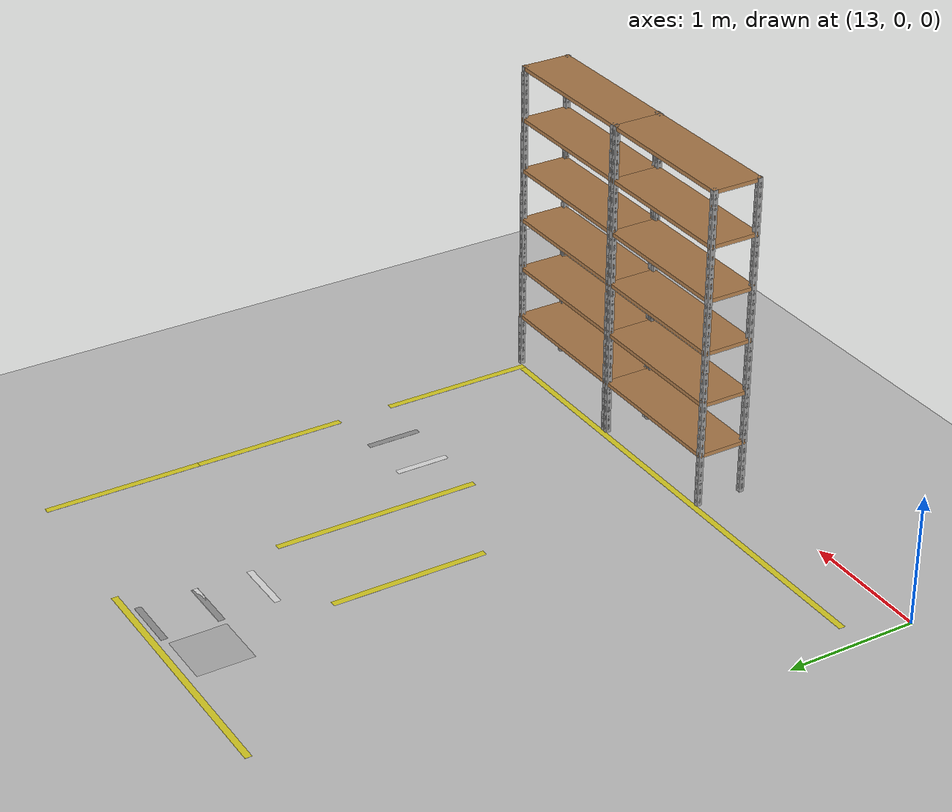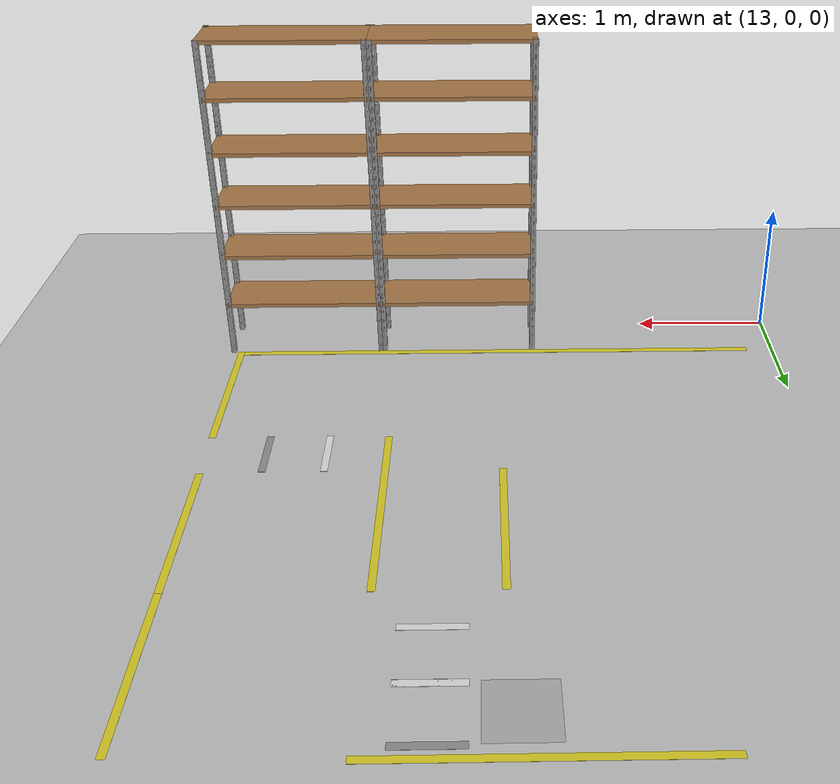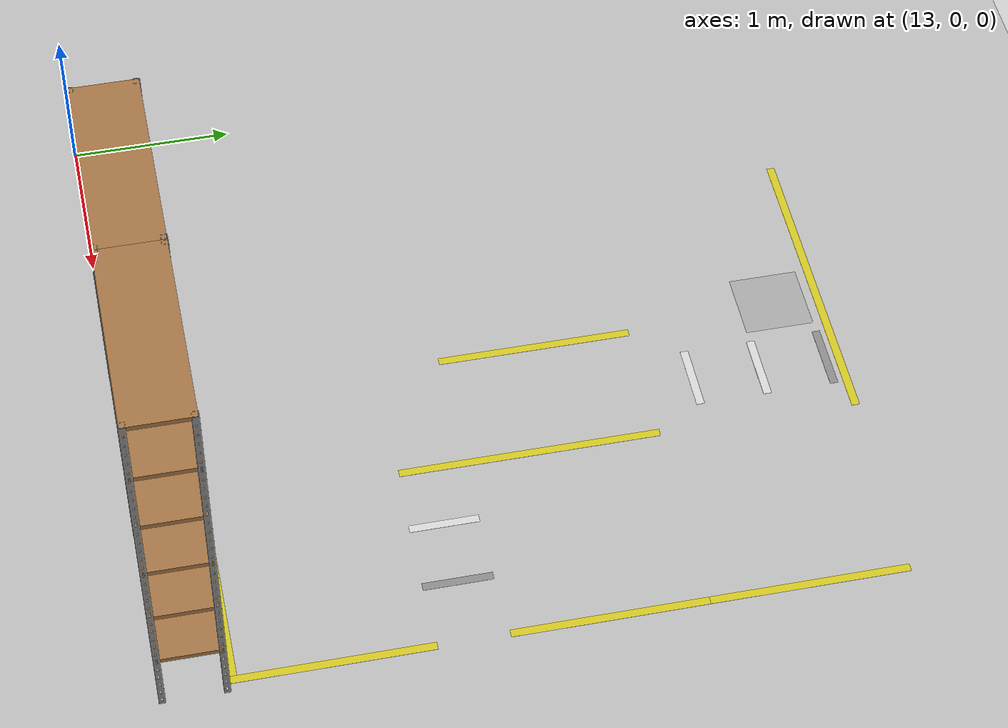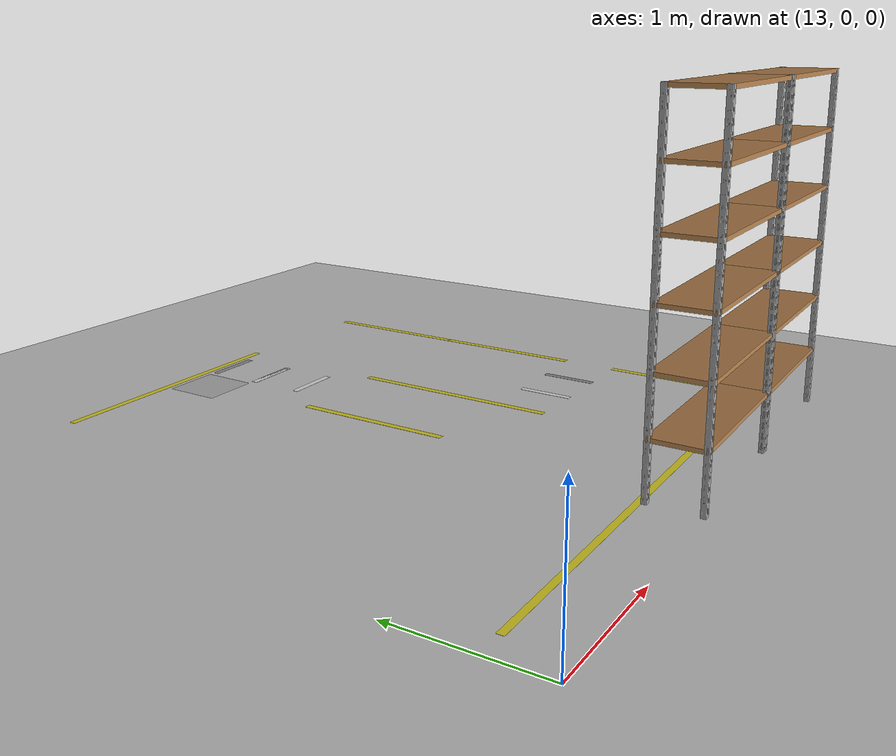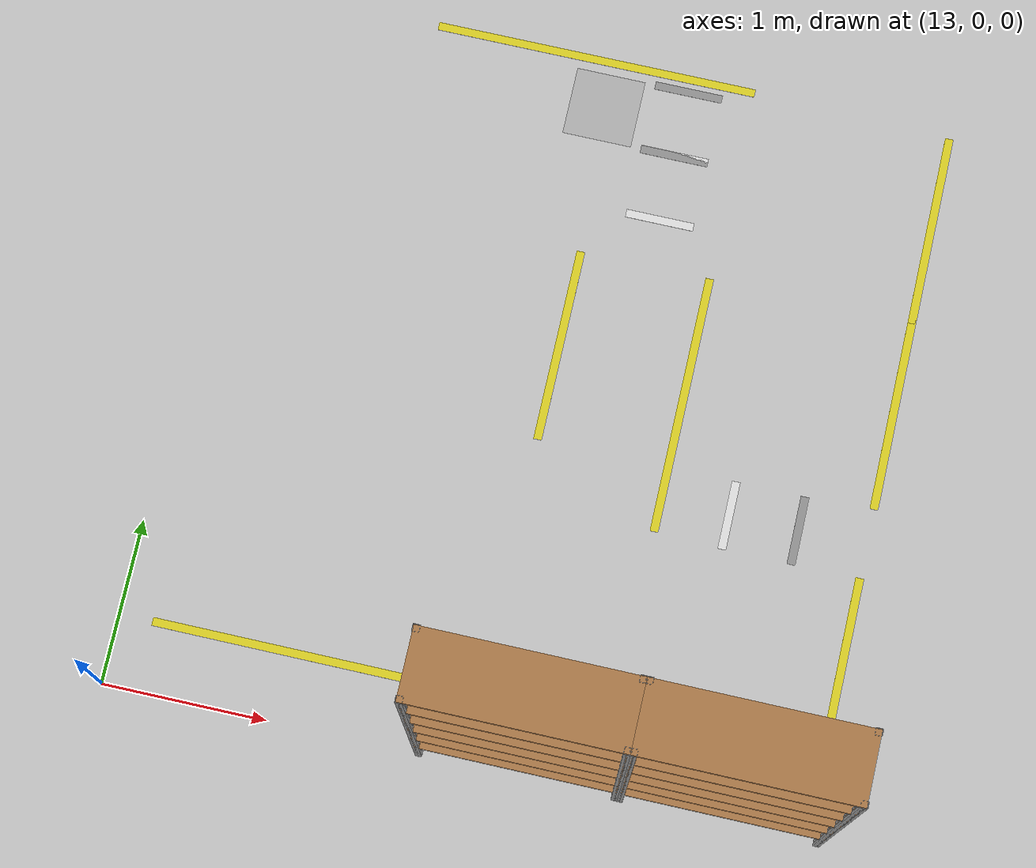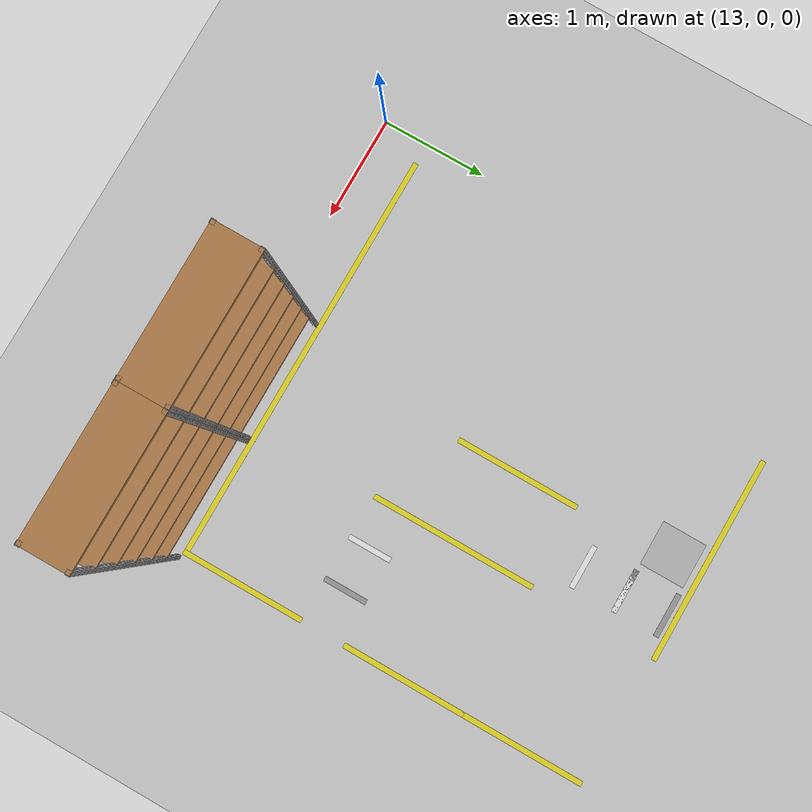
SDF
<sdf version="1.6">
 <world name="default">
  <model name="ground_plane">
   <static>1</static>
   <link name="link">
    <collision name="collision">
     <geometry><plane><normal>0 0 1</normal><size>100 100</size></plane></geometry>
     <surface><friction><ode><mu>100</mu><mu2>50</mu2></ode></friction></surface>
    </collision>
    <visual name="visual">
     <cast_shadows>0</cast_shadows>
     <geometry><plane><normal>0 0 1</normal><size>100 100</size></plane></geometry>
     <material>
      <script><uri>file://media/materials/scripts/gazebo.material</uri><name>Gazebo/Grey</name></script>
     </material>
    </visual>
   </link>
  </model>
  <model name="shelfDemo_120cmx40cm_3">
   <link name="link_0">
    <inertial>
     <mass>1</mass>
     <inertia>
      <ixx>0.166667</ixx>
      <ixy>0</ixy>
      <ixz>0</ixz>
      <iyy>0.166667</iyy>
      <iyz>0</iyz>
      <izz>0.166667</izz>
     </inertia>
    </inertial>
    <visual name="visual">
     <pose>0 0 0.414 0 -0 0</pose>
     <geometry><box><size>1.2 0.4 0.03</size></box></geometry>
     <material>
      <lighting>1</lighting>
      <script><uri>file://media/materials/scripts/gazebo.material</uri><name>Gazebo/WoodFloor</name></script>
      <shader type="pixel"><normal_map>__default__</normal_map></shader>
     </material>
    </visual>
    <visual name="ModelPreview_0::link_0::visual_2">
     <pose>0 0 0.828 0 -0 0</pose>
     <geometry><box><size>1.2 0.4 0.03</size></box></geometry>
     <material>
      <lighting>1</lighting>
      <script><uri>file://media/materials/scripts/gazebo.material</uri><name>Gazebo/WoodFloor</name></script>
      <shader type="pixel"><normal_map>__default__</normal_map></shader>
     </material>
    </visual>
    <visual name="ModelPreview_0::link_0::visual_3">
     <pose>0 0 1.242 0 -0 0</pose>
     <geometry><box><size>1.2 0.4 0.03</size></box></geometry>
     <material>
      <lighting>1</lighting>
      <script><uri>file://media/materials/scripts/gazebo.material</uri><name>Gazebo/WoodFloor</name></script>
      <shader type="pixel"><normal_map>__default__</normal_map></shader>
     </material>
    </visual>
    <visual name="ModelPreview_0::link_0::visual_4">
     <pose>0 0 1.656 0 -0 0</pose>
     <geometry><box><size>1.2 0.4 0.03</size></box></geometry>
     <material>
      <lighting>1</lighting>
      <script><uri>file://media/materials/scripts/gazebo.material</uri><name>Gazebo/WoodFloor</name></script>
      <shader type="pixel"><normal_map>__default__</normal_map></shader>
     </material>
    </visual>
    <visual name="ModelPreview_0::link_0::visual_5">
     <pose>0 0 2.07 0 -0 0</pose>
     <geometry><box><size>1.2 0.4 0.03</size></box></geometry>
     <material>
      <lighting>1</lighting>
      <script><uri>file://media/materials/scripts/gazebo.material</uri><name>Gazebo/WoodFloor</name></script>
      <shader type="pixel"><normal_map>__default__</normal_map></shader>
     </material>
    </visual>
    <visual name="ModelPreview_0::link_0::visual_6">
     <pose>0 0 2.484 0 -0 0</pose>
     <geometry><box><size>1.2 0.4 0.03</size></box></geometry>
     <material>
      <lighting>1</lighting>
      <script><uri>file://media/materials/scripts/gazebo.material</uri><name>Gazebo/WoodFloor</name></script>
      <shader type="pixel"><normal_map>__default__</normal_map></shader>
     </material>
    </visual>
    <visual name="ModelPreview_0::link_0::visual_7">
     <pose>0.585 0.185 0 0 -0 0</pose>
     <geometry>
      <mesh><uri>model://shelfDemo_91/model/2-5mDirek.stl</uri><scale>0.0008 0.0008 0.001</scale></mesh>
     </geometry>
     <material>
      <lighting>1</lighting>
      <script><uri>file://media/materials/scripts/gazebo.material</uri><name>Gazebo/Grey</name></script>
      <shader type="pixel"><normal_map>__default__</normal_map></shader>
      <ambient>0.3 0.3 0.3 1</ambient>
      <diffuse>0.7 0.7 0.7 1</diffuse>
      <specular>0.01 0.01 0.01 1</specular>
      <emissive>0 0 0 1</emissive>
     </material>
    </visual>
    <visual name="ModelPreview_0::link_0::visual_8">
     <pose>-0.585 0.185 0 0 -0 0</pose>
     <geometry>
      <mesh><uri>model://shelfDemo_91/model/2-5mDirek.stl</uri><scale>0.0008 0.0008 0.001</scale></mesh>
     </geometry>
     <material>
      <lighting>1</lighting>
      <script><uri>file://media/materials/scripts/gazebo.material</uri><name>Gazebo/Grey</name></script>
      <shader type="pixel"><normal_map>__default__</normal_map></shader>
      <ambient>0.3 0.3 0.3 1</ambient>
      <diffuse>0.7 0.7 0.7 1</diffuse>
      <specular>0.01 0.01 0.01 1</specular>
      <emissive>0 0 0 1</emissive>
     </material>
    </visual>
    <visual name="ModelPreview_0::link_0::visual_9">
     <pose>0.585 -0.185 0 0 -0 0</pose>
     <geometry>
      <mesh><uri>model://shelfDemo_91/model/2-5mDirek.stl</uri><scale>0.0008 0.0008 0.001</scale></mesh>
     </geometry>
     <material>
      <lighting>1</lighting>
      <script><uri>file://media/materials/scripts/gazebo.material</uri><name>Gazebo/Grey</name></script>
      <shader type="pixel"><normal_map>__default__</normal_map></shader>
      <ambient>0.3 0.3 0.3 1</ambient>
      <diffuse>0.7 0.7 0.7 1</diffuse>
      <specular>0.01 0.01 0.01 1</specular>
      <emissive>0 0 0 1</emissive>
     </material>
    </visual>
    <visual name="ModelPreview_0::link_0::visual_10">
     <pose>-0.585 -0.185 0 0 -0 0</pose>
     <geometry>
      <mesh><uri>model://shelfDemo_91/model/2-5mDirek.stl</uri><scale>0.0008 0.0008 0.001</scale></mesh>
     </geometry>
     <material>
      <lighting>1</lighting>
      <script><uri>file://media/materials/scripts/gazebo.material</uri><name>Gazebo/Grey</name></script>
      <shader type="pixel"><normal_map>__default__</normal_map></shader>
      <ambient>0.3 0.3 0.3 1</ambient>
      <diffuse>0.7 0.7 0.7 1</diffuse>
      <specular>0.01 0.01 0.01 1</specular>
      <emissive>0 0 0 1</emissive>
     </material>
    </visual>
    <collision name="collision_6">
     <pose>0.585 0.185 1.25 0 -0 0</pose>
     <geometry><box><size>0.02 0.02 2.5</size></box></geometry>
    </collision>
    <collision name="collision_7">
     <pose>0.585 -0.185 1.25 0 -0 0</pose>
     <geometry><box><size>0.02 0.02 2.5</size></box></geometry>
    </collision>
    <collision name="collision_8">
     <pose>-0.585 0.185 1.25 0 -0 0</pose>
     <geometry><box><size>0.02 0.02 2.5</size></box></geometry>
    </collision>
    <collision name="collision">
     <pose>0 0 0.414 0 -0 0</pose>
     <geometry><box><size>1.2 0.4 0.03</size></box></geometry>
    </collision>
    <collision name="collision_1">
     <pose>0 0 0.828 0 -0 0</pose>
     <geometry><box><size>1.2 0.4 0.03</size></box></geometry>
    </collision>
    <collision name="collision_2">
     <pose>0 0 1.242 0 -0 0</pose>
     <geometry><box><size>1.2 0.4 0.03</size></box></geometry>
    </collision>
    <collision name="collision_3">
     <pose>0 0 1.656 0 -0 0</pose>
     <geometry><box><size>1.2 0.4 0.03</size></box></geometry>
    </collision>
    <collision name="collision_4">
     <pose>0 0 2.07 0 -0 0</pose>
     <geometry><box><size>1.2 0.4 0.03</size></box></geometry>
    </collision>
    <collision name="collision_5">
     <pose>0 0 2.484 0 -0 0</pose>
     <geometry><box><size>1.2 0.4 0.03</size></box></geometry>
    </collision>
    <collision name="collision_9">
     <pose>-0.585 -0.185 1.25 0 -0 0</pose>
     <geometry><box><size>0.02 0.02 2.5</size></box></geometry>
    </collision>
   </link>
   <static>1</static>
   <pose>15.5 0.2 0 0 -0 0</pose>
  </model>
  <model name="shelfDemo_120cmx40cm_4">
   <link name="link_0">
    <inertial>
     <mass>1</mass>
     <inertia>
      <ixx>0.166667</ixx>
      <ixy>0</ixy>
      <ixz>0</ixz>
      <iyy>0.166667</iyy>
      <iyz>0</iyz>
      <izz>0.166667</izz>
     </inertia>
    </inertial>
    <visual name="visual">
     <pose>0 0 0.414 0 -0 0</pose>
     <geometry><box><size>1.2 0.4 0.03</size></box></geometry>
     <material>
      <lighting>1</lighting>
      <script><uri>file://media/materials/scripts/gazebo.material</uri><name>Gazebo/WoodFloor</name></script>
      <shader type="pixel"><normal_map>__default__</normal_map></shader>
     </material>
    </visual>
    <visual name="ModelPreview_0::link_0::visual_2">
     <pose>0 0 0.828 0 -0 0</pose>
     <geometry><box><size>1.2 0.4 0.03</size></box></geometry>
     <material>
      <lighting>1</lighting>
      <script><uri>file://media/materials/scripts/gazebo.material</uri><name>Gazebo/WoodFloor</name></script>
      <shader type="pixel"><normal_map>__default__</normal_map></shader>
     </material>
    </visual>
    <visual name="ModelPreview_0::link_0::visual_3">
     <pose>0 0 1.242 0 -0 0</pose>
     <geometry><box><size>1.2 0.4 0.03</size></box></geometry>
     <material>
      <lighting>1</lighting>
      <script><uri>file://media/materials/scripts/gazebo.material</uri><name>Gazebo/WoodFloor</name></script>
      <shader type="pixel"><normal_map>__default__</normal_map></shader>
     </material>
    </visual>
    <visual name="ModelPreview_0::link_0::visual_4">
     <pose>0 0 1.656 0 -0 0</pose>
     <geometry><box><size>1.2 0.4 0.03</size></box></geometry>
     <material>
      <lighting>1</lighting>
      <script><uri>file://media/materials/scripts/gazebo.material</uri><name>Gazebo/WoodFloor</name></script>
      <shader type="pixel"><normal_map>__default__</normal_map></shader>
     </material>
    </visual>
    <visual name="ModelPreview_0::link_0::visual_5">
     <pose>0 0 2.07 0 -0 0</pose>
     <geometry><box><size>1.2 0.4 0.03</size></box></geometry>
     <material>
      <lighting>1</lighting>
      <script><uri>file://media/materials/scripts/gazebo.material</uri><name>Gazebo/WoodFloor</name></script>
      <shader type="pixel"><normal_map>__default__</normal_map></shader>
     </material>
    </visual>
    <visual name="ModelPreview_0::link_0::visual_6">
     <pose>0 0 2.484 0 -0 0</pose>
     <geometry><box><size>1.2 0.4 0.03</size></box></geometry>
     <material>
      <lighting>1</lighting>
      <script><uri>file://media/materials/scripts/gazebo.material</uri><name>Gazebo/WoodFloor</name></script>
      <shader type="pixel"><normal_map>__default__</normal_map></shader>
     </material>
    </visual>
    <visual name="ModelPreview_0::link_0::visual_7">
     <pose>0.585 0.185 0 0 -0 0</pose>
     <geometry>
      <mesh><uri>model://shelfDemo_91/model/2-5mDirek.stl</uri><scale>0.0008 0.0008 0.001</scale></mesh>
     </geometry>
     <material>
      <lighting>1</lighting>
      <script><uri>file://media/materials/scripts/gazebo.material</uri><name>Gazebo/Grey</name></script>
      <shader type="pixel"><normal_map>__default__</normal_map></shader>
      <ambient>0.3 0.3 0.3 1</ambient>
      <diffuse>0.7 0.7 0.7 1</diffuse>
      <specular>0.01 0.01 0.01 1</specular>
      <emissive>0 0 0 1</emissive>
     </material>
    </visual>
    <visual name="ModelPreview_0::link_0::visual_8">
     <pose>-0.585 0.185 0 0 -0 0</pose>
     <geometry>
      <mesh><uri>model://shelfDemo_91/model/2-5mDirek.stl</uri><scale>0.0008 0.0008 0.001</scale></mesh>
     </geometry>
     <material>
      <lighting>1</lighting>
      <script><uri>file://media/materials/scripts/gazebo.material</uri><name>Gazebo/Grey</name></script>
      <shader type="pixel"><normal_map>__default__</normal_map></shader>
      <ambient>0.3 0.3 0.3 1</ambient>
      <diffuse>0.7 0.7 0.7 1</diffuse>
      <specular>0.01 0.01 0.01 1</specular>
      <emissive>0 0 0 1</emissive>
     </material>
    </visual>
    <visual name="ModelPreview_0::link_0::visual_9">
     <pose>0.585 -0.185 0 0 -0 0</pose>
     <geometry>
      <mesh><uri>model://shelfDemo_91/model/2-5mDirek.stl</uri><scale>0.0008 0.0008 0.001</scale></mesh>
     </geometry>
     <material>
      <lighting>1</lighting>
      <script><uri>file://media/materials/scripts/gazebo.material</uri><name>Gazebo/Grey</name></script>
      <shader type="pixel"><normal_map>__default__</normal_map></shader>
      <ambient>0.3 0.3 0.3 1</ambient>
      <diffuse>0.7 0.7 0.7 1</diffuse>
      <specular>0.01 0.01 0.01 1</specular>
      <emissive>0 0 0 1</emissive>
     </material>
    </visual>
    <visual name="ModelPreview_0::link_0::visual_10">
     <pose>-0.585 -0.185 0 0 -0 0</pose>
     <geometry>
      <mesh><uri>model://shelfDemo_91/model/2-5mDirek.stl</uri><scale>0.0008 0.0008 0.001</scale></mesh>
     </geometry>
     <material>
      <lighting>1</lighting>
      <script><uri>file://media/materials/scripts/gazebo.material</uri><name>Gazebo/Grey</name></script>
      <shader type="pixel"><normal_map>__default__</normal_map></shader>
      <ambient>0.3 0.3 0.3 1</ambient>
      <diffuse>0.7 0.7 0.7 1</diffuse>
      <specular>0.01 0.01 0.01 1</specular>
      <emissive>0 0 0 1</emissive>
     </material>
    </visual>
    <collision name="collision_6">
     <pose>0.585 0.185 1.25 0 -0 0</pose>
     <geometry><box><size>0.02 0.02 2.5</size></box></geometry>
    </collision>
    <collision name="collision_7">
     <pose>0.585 -0.185 1.25 0 -0 0</pose>
     <geometry><box><size>0.02 0.02 2.5</size></box></geometry>
    </collision>
    <collision name="collision_8">
     <pose>-0.585 0.185 1.25 0 -0 0</pose>
     <geometry><box><size>0.02 0.02 2.5</size></box></geometry>
    </collision>
    <collision name="collision">
     <pose>0 0 0.414 0 -0 0</pose>
     <geometry><box><size>1.2 0.4 0.03</size></box></geometry>
    </collision>
    <collision name="collision_1">
     <pose>0 0 0.828 0 -0 0</pose>
     <geometry><box><size>1.2 0.4 0.03</size></box></geometry>
    </collision>
    <collision name="collision_2">
     <pose>0 0 1.242 0 -0 0</pose>
     <geometry><box><size>1.2 0.4 0.03</size></box></geometry>
    </collision>
    <collision name="collision_3">
     <pose>0 0 1.656 0 -0 0</pose>
     <geometry><box><size>1.2 0.4 0.03</size></box></geometry>
    </collision>
    <collision name="collision_4">
     <pose>0 0 2.07 0 -0 0</pose>
     <geometry><box><size>1.2 0.4 0.03</size></box></geometry>
    </collision>
    <collision name="collision_5">
     <pose>0 0 2.484 0 -0 0</pose>
     <geometry><box><size>1.2 0.4 0.03</size></box></geometry>
    </collision>
    <collision name="collision_9">
     <pose>-0.585 -0.185 1.25 0 -0 0</pose>
     <geometry><box><size>0.02 0.02 2.5</size></box></geometry>
    </collision>
   </link>
   <static>1</static>
   <pose>16.7 0.2 0 0 -0 0</pose>
  </model>
  <model name="line120cm_1">
   <link name="link_1">
    <inertial>
     <mass>1</mass>
     <inertia>
      <ixx>0.166667</ixx>
      <ixy>0</ixy>
      <ixz>0</ixz>
      <iyy>0.166667</iyy>
      <iyz>0</iyz>
      <izz>0.166667</izz>
     </inertia>
    </inertial>
    <visual name="visual">
     <geometry><box><size>1.2 0.05 0.001</size></box></geometry>
     <material>
      <script><uri>file://media/materials/scripts/gazebo.material</uri><name>Gazebo/Yellow</name></script>
     </material>
    </visual>
    <collision name="collision"><geometry><box><size>1.2 0.05 1e-05</size></box></geometry></collision>
   </link>
   <static>1</static>
   <pose>15.175 2.6 0 0 -0 1.5708</pose>
  </model>
  <model name="whiteLine_42_2">
   <link name="link_3">
    <inertial>
     <mass>1</mass>
     <inertia>
      <ixx>0.166667</ixx>
      <ixy>0</ixy>
      <ixz>0</ixz>
      <iyy>0.166667</iyy>
      <iyz>0</iyz>
      <izz>0.166667</izz>
     </inertia>
    </inertial>
    <visual name="visual">
     <pose>-0.21 0 0 0 -0 0</pose>
     <geometry><box><size>0.05 0.42 0.001</size></box></geometry>
     <material>
      <lighting>1</lighting>
      <script><uri>file://media/materials/scripts/gazebo.material</uri><name>Gazebo/White</name></script>
      <shader type="pixel"><normal_map>__default__</normal_map></shader>
      <ambient>1 1 1 1</ambient>
      <diffuse>1 1 1 1</diffuse>
      <specular>0.01 0.01 0.01 1</specular>
      <emissive>0 0 0 1</emissive>
     </material>
    </visual>
    <visual name="ModelPreview_7::link_3::visual_1">
     <pose>0.21 0 0 0 -0 0</pose>
     <geometry><box><size>0.05 0.42 0.001</size></box></geometry>
     <material>
      <lighting>1</lighting>
      <script><uri>file://media/materials/scripts/gazebo.material</uri><name>Gazebo/Grey</name></script>
      <shader type="pixel"><normal_map>__default__</normal_map></shader>
      <ambient>1 1 1 1</ambient>
      <diffuse>1 1 1 1</diffuse>
      <specular>0.01 0.01 0.01 1</specular>
      <emissive>0 0 0 1</emissive>
     </material>
    </visual>
    <collision name="collision">
     <pose>-0.21 0 0 0 -0 0</pose>
     <geometry><box><size>0.05 0.42 1e-05</size></box></geometry>
    </collision>
    <collision name="collision_1">
     <pose>0.21 0 0 0 -0 0</pose>
     <geometry><box><size>0.05 0.42 1e-05</size></box></geometry>
    </collision>
   </link>
   <static>1</static>
   <pose>15.6 3.71087 0 0 -0 1.5708</pose>
  </model>
  <model name="whiteLine_42_3">
   <link name="link_3">
    <inertial>
     <mass>1</mass>
     <inertia>
      <ixx>0.166667</ixx>
      <ixy>0</ixy>
      <ixz>0</ixz>
      <iyy>0.166667</iyy>
      <iyz>0</iyz>
      <izz>0.166667</izz>
     </inertia>
    </inertial>
    <visual name="visual">
     <pose>-0.21 0 0 0 -0 0</pose>
     <geometry><box><size>0.05 0.42 0.001</size></box></geometry>
     <material>
      <lighting>1</lighting>
      <script><uri>file://media/materials/scripts/gazebo.material</uri><name>Gazebo/White</name></script>
      <shader type="pixel"><normal_map>__default__</normal_map></shader>
      <ambient>1 1 1 1</ambient>
      <diffuse>1 1 1 1</diffuse>
      <specular>0.01 0.01 0.01 1</specular>
      <emissive>0 0 0 1</emissive>
     </material>
    </visual>
    <visual name="ModelPreview_7::link_3::visual_1">
     <pose>0.21 0 0 0 -0 0</pose>
     <geometry><box><size>0.05 0.42 0.001</size></box></geometry>
     <material>
      <lighting>1</lighting>
      <script><uri>file://media/materials/scripts/gazebo.material</uri><name>Gazebo/Grey</name></script>
      <shader type="pixel"><normal_map>__default__</normal_map></shader>
      <ambient>1 1 1 1</ambient>
      <diffuse>1 1 1 1</diffuse>
      <specular>0.01 0.01 0.01 1</specular>
      <emissive>0 0 0 1</emissive>
     </material>
    </visual>
    <collision name="collision">
     <pose>-0.21 0 0 0 -0 0</pose>
     <geometry><box><size>0.05 0.42 1e-05</size></box></geometry>
    </collision>
    <collision name="collision_1">
     <pose>0.21 0 0 0 -0 0</pose>
     <geometry><box><size>0.05 0.42 1e-05</size></box></geometry>
    </collision>
   </link>
   <static>1</static>
   <pose>15.6004 4.13233 0 0 -0 1.5708</pose>
  </model>
  <model name="forkliftRoadSign">
   <link name="link_7">
    <inertial>
     <mass>1</mass>
     <inertia>
      <ixx>0.166667</ixx>
      <ixy>0</ixy>
      <ixz>0</ixz>
      <iyy>0.166667</iyy>
      <iyz>0</iyz>
      <izz>0.166667</izz>
     </inertia>
    </inertial>
    <visual name="visual">
     <pose>-0.2 -0.2 0.01 -1.5708 -0 0</pose>
     <geometry>
      <mesh><uri>model://forkliftRoadSign/model/model.dae</uri><scale>0.7 0.7 0.7</scale></mesh>
     </geometry>
     <material><lighting>1</lighting></material>
    </visual>
   </link>
   <static>1</static>
   <pose>15.1 4.14241 0 0 0 -1.5708</pose>
  </model>
  <model name="line2m">
   <link name="link_0">
    <inertial>
     <mass>1</mass>
     <inertia>
      <ixx>0.166667</ixx>
      <ixy>0</ixy>
      <ixz>0</ixz>
      <iyy>0.166667</iyy>
      <iyz>0</iyz>
      <izz>0.166667</izz>
     </inertia>
    </inertial>
    <visual name="visual">
     <geometry><box><size>2 0.05 0.001</size></box></geometry>
     <material>
      <lighting>1</lighting>
      <script><uri>file://media/materials/scripts/gazebo.material</uri><name>Gazebo/Yellow</name></script>
     </material>
    </visual>
    <collision name="collision"><geometry><box><size>2 0.05 1e-05</size></box></geometry></collision>
   </link>
   <static>1</static>
   <pose>15 4.425 0 0 -0 0</pose>
  </model>
  <model name="whiteLine_42_6">
   <link name="link_3">
    <inertial>
     <mass>1</mass>
     <inertia>
      <ixx>0.166667</ixx>
      <ixy>0</ixy>
      <ixz>0</ixz>
      <iyy>0.166667</iyy>
      <iyz>0</iyz>
      <izz>0.166667</izz>
     </inertia>
    </inertial>
    <visual name="visual">
     <pose>-0.21 0 0 0 -0 0</pose>
     <geometry><box><size>0.05 0.42 0.001</size></box></geometry>
     <material>
      <lighting>1</lighting>
      <script><uri>file://media/materials/scripts/gazebo.material</uri><name>Gazebo/White</name></script>
      <shader type="pixel"><normal_map>__default__</normal_map></shader>
      <ambient>1 1 1 1</ambient>
      <diffuse>1 1 1 1</diffuse>
      <specular>0.01 0.01 0.01 1</specular>
      <emissive>0 0 0 1</emissive>
     </material>
    </visual>
    <visual name="ModelPreview_7::link_3::visual_1">
     <pose>0.21 0 0 0 -0 0</pose>
     <geometry><box><size>0.05 0.42 0.001</size></box></geometry>
     <material>
      <lighting>1</lighting>
      <script><uri>file://media/materials/scripts/gazebo.material</uri><name>Gazebo/Grey</name></script>
      <shader type="pixel"><normal_map>__default__</normal_map></shader>
      <ambient>1 1 1 1</ambient>
      <diffuse>1 1 1 1</diffuse>
      <specular>0.01 0.01 0.01 1</specular>
      <emissive>0 0 0 1</emissive>
     </material>
    </visual>
    <collision name="collision">
     <pose>-0.21 0 0 0 -0 0</pose>
     <geometry><box><size>0.05 0.42 1e-05</size></box></geometry>
    </collision>
    <collision name="collision_1">
     <pose>0.21 0 0 0 -0 0</pose>
     <geometry><box><size>0.05 0.42 1e-05</size></box></geometry>
    </collision>
   </link>
   <static>1</static>
   <pose>16.6 1.8 0 0 -0 0</pose>
  </model>
  <model name="line160cm_2">
   <link name="link_1">
    <inertial>
     <mass>1</mass>
     <inertia>
      <ixx>0.166667</ixx>
      <ixy>0</ixy>
      <ixz>0</ixz>
      <iyy>0.166667</iyy>
      <iyz>0</iyz>
      <izz>0.166667</izz>
     </inertia>
    </inertial>
    <visual name="visual">
     <geometry><box><size>1.6 0.05 0.001</size></box></geometry>
     <material>
      <script><uri>file://media/materials/scripts/gazebo.material</uri><name>Gazebo/Yellow</name></script>
     </material>
    </visual>
    <collision name="collision"><geometry><box><size>1.6 0.05 1e-05</size></box></geometry></collision>
   </link>
   <static>1</static>
   <pose>15.975 2.405 0 0 -0 1.5708</pose>
  </model>
  <model name="line120cm_13">
   <link name="link_1">
    <inertial>
     <mass>1</mass>
     <inertia>
      <ixx>0.166667</ixx>
      <ixy>0</ixy>
      <ixz>0</ixz>
      <iyy>0.166667</iyy>
      <iyz>0</iyz>
      <izz>0.166667</izz>
     </inertia>
    </inertial>
    <visual name="visual">
     <geometry><box><size>1.2 0.05 0.001</size></box></geometry>
     <material>
      <script><uri>file://media/materials/scripts/gazebo.material</uri><name>Gazebo/Yellow</name></script>
     </material>
    </visual>
    <collision name="collision"><geometry><box><size>1.2 0.05 1e-05</size></box></geometry></collision>
   </link>
   <static>1</static>
   <pose>17.225 3.8 0 0 -0 1.5708</pose>
  </model>
  <model name="line120cm_14">
   <link name="link_1">
    <inertial>
     <mass>1</mass>
     <inertia>
      <ixx>0.166667</ixx>
      <ixy>0</ixy>
      <ixz>0</ixz>
      <iyy>0.166667</iyy>
      <iyz>0</iyz>
      <izz>0.166667</izz>
     </inertia>
    </inertial>
    <visual name="visual">
     <geometry><box><size>1.2 0.05 0.001</size></box></geometry>
     <material>
      <script><uri>file://media/materials/scripts/gazebo.material</uri><name>Gazebo/Yellow</name></script>
     </material>
    </visual>
    <collision name="collision"><geometry><box><size>1.2 0.05 1e-05</size></box></geometry></collision>
   </link>
   <static>1</static>
   <pose>17.225 2.625 0 0 -0 1.5708</pose>
  </model>
  <model name="line120cm_15">
   <link name="link_1">
    <inertial>
     <mass>1</mass>
     <inertia>
      <ixx>0.166667</ixx>
      <ixy>0</ixy>
      <ixz>0</ixz>
      <iyy>0.166667</iyy>
      <iyz>0</iyz>
      <izz>0.166667</izz>
     </inertia>
    </inertial>
    <visual name="visual">
     <geometry><box><size>1.2 0.05 0.001</size></box></geometry>
     <material>
      <script><uri>file://media/materials/scripts/gazebo.material</uri><name>Gazebo/Yellow</name></script>
     </material>
    </visual>
    <collision name="collision"><geometry><box><size>1.2 0.05 1e-05</size></box></geometry></collision>
   </link>
   <static>1</static>
   <pose>17.225 1 0 0 -0 1.5708</pose>
  </model>
  <model name="line4m">
   <link name="link_3">
    <inertial>
     <mass>1</mass>
     <inertia>
      <ixx>0.166667</ixx>
      <ixy>0</ixy>
      <ixz>0</ixz>
      <iyy>0.166667</iyy>
      <iyz>0</iyz>
      <izz>0.166667</izz>
     </inertia>
    </inertial>
    <visual name="visual">
     <geometry><box><size>0.05 4 0.001</size></box></geometry>
     <material>
      <lighting>1</lighting>
      <script><uri>file://media/materials/scripts/gazebo.material</uri><name>Gazebo/Yellow</name></script>
     </material>
    </visual>
    <collision name="collision"><geometry><box><size>0.05 4 1e-06</size></box></geometry></collision>
   </link>
   <static>1</static>
   <pose>15.2001 0.425 0 0 -0 1.5708</pose>
  </model>
 </world>
</sdf>
